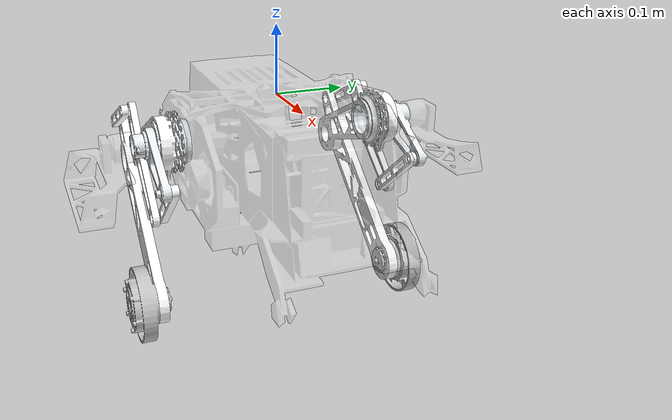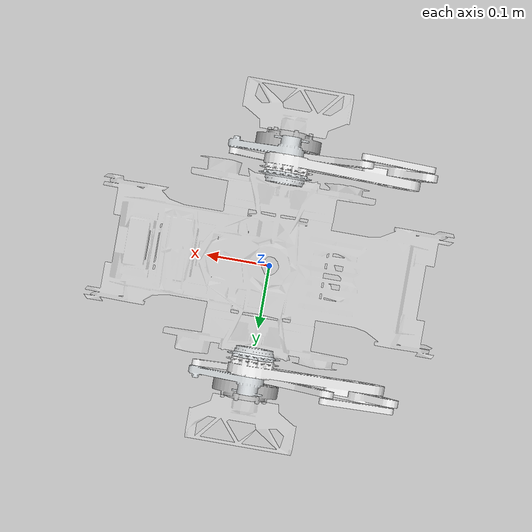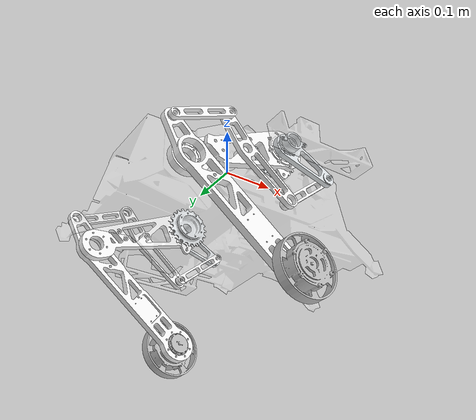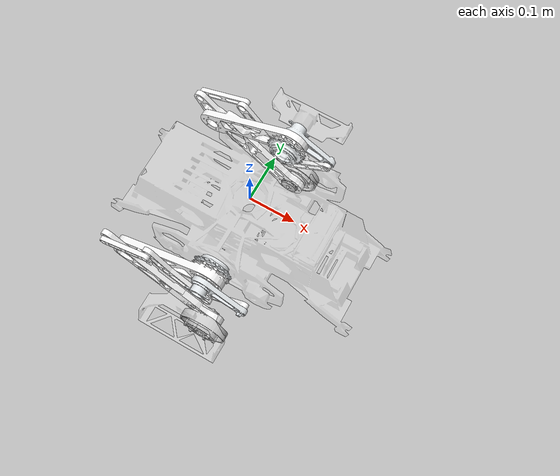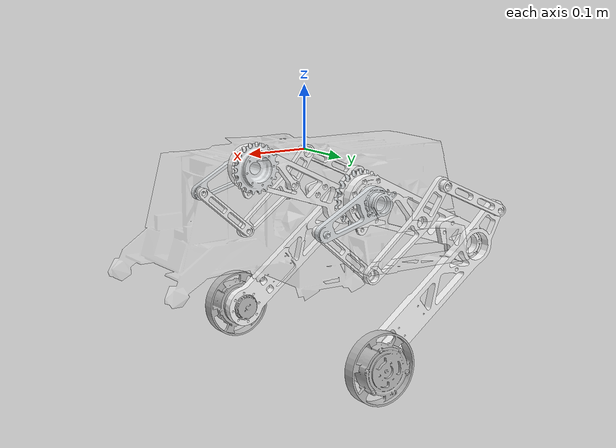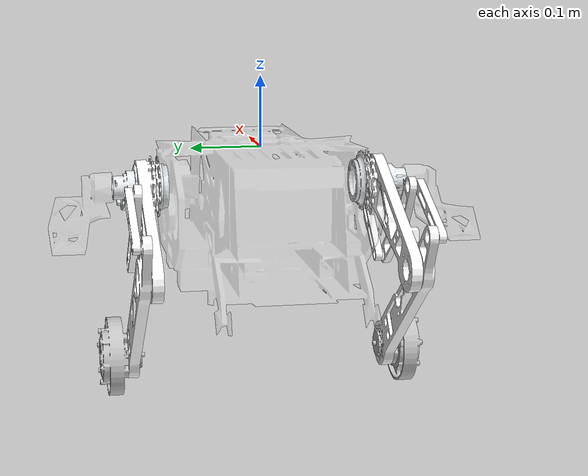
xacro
<?xml version="1.0"?>
<robot xmlns:xacro="http://www.ros.org/wiki/xacro" name="at_wheel_leg">
    <xacro:include filename="$(find atwl)/model/at_wheel_leg.urdf" />

    <ros2_control name="atwl_system" type="system">
        <hardware>
            <plugin>mujoco_ros2_control/MujocoSystem</plugin>
        </hardware>

        <joint name="base_link_left_front1_link_joint">
            <command_interface name="effort" />
            <state_interface name="position" />
            <state_interface name="velocity" />
            <state_interface name="effort" />
        </joint>

        <joint name="base_link_right_front1_link_joint">
            <command_interface name="effort" />
            <state_interface name="position" />
            <state_interface name="velocity" />
            <state_interface name="effort" />
        </joint>

        <joint name="base_link_left_rear1_link_joint">
            <command_interface name="effort" />
            <state_interface name="position" />
            <state_interface name="velocity" />
            <state_interface name="effort" />
        </joint>

        <joint name="base_link_right_rear1_link_joint">
            <command_interface name="effort" />
            <state_interface name="position" />
            <state_interface name="velocity" />
            <state_interface name="effort" />
        </joint>

        <joint name="left_rear2_link_left_wheel_link_joint">
            <command_interface name="effort" />
            <state_interface name="position" />
            <state_interface name="velocity" />
            <state_interface name="effort" />
        </joint>

        <joint name="right_rear2_link_right_wheel_link_joint">
            <command_interface name="effort" />
            <state_interface name="position" />
            <state_interface name="velocity" />
            <state_interface name="effort" />
        </joint>
    </ros2_control>
</robot>

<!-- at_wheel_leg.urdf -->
<robot
  name="at_wheel_leg">
  <link
    name="base_link">
    <inertial>
      <origin
        xyz="0.0166017212610828 -0.00156965062075262 -0.0947729612931393"
        rpy="0 0 0" />
      <mass
        value="10.51259490" />
      <inertia
        ixx="0.14496049"
        ixy="0"
        ixz="-0.00068753"
        iyy="0.14966292"
        iyz="0.00038021"
        izz="0.24991099" />
    </inertial>
    <visual>
      <origin
        xyz="0 0 0"
        rpy="0 0 0" />
      <geometry>
        <mesh
          filename="base_link.STL" />
      </geometry>
      <material
        name="">
        <color
          rgba="1 1 1 0.25" />
      </material>
    </visual>
    <collision>
      <origin
        xyz="0 0 0"
        rpy="0 0 0" />
      <geometry>
        <mesh
          filename="base_link.STL" />
      </geometry>
    </collision>
  </link>
  <link
    name="left_front1_link">
    <inertial>
      <origin
        xyz="0.0149970599113191 -0.0168863626491255 3.71072167160147E-08"
        rpy="0 0 0" />
      <mass
        value="0.26714" />
      <inertia
        ixx="0.00016801"
        ixy="-0.0000361"
        ixz="0"
        iyy="0.00023307"
        iyz="0"
        izz="0.00028002" />
    </inertial>
    <visual>
      <origin
        xyz="0 0 0"
        rpy="0 0 0" />
      <geometry>
        <mesh
          filename="left_front1_link.STL" />
      </geometry>
      <material
        name="">
        <color
          rgba="0.898039215686275 0.917647058823529 0.929411764705882 1" />
      </material>
    </visual>
    <collision>
      <origin
        xyz="0 0 0"
        rpy="0 0 0" />
      <geometry>
        <mesh
          filename="left_front1_link.STL" />
      </geometry>
    </collision>
  </link>
  <joint
    name="base_link_left_front1_link_joint"
    type="revolute">
    <origin
      xyz="0 0.185 -0.053"
      rpy="0 0.39893 0" />
    <parent
      link="base_link" />
    <child
      link="left_front1_link" />
    <axis
      xyz="0 1 0" />
    <limit
      lower="-3.14"
      upper="3.14"
      effort="40"
      velocity="30" />
  </joint>
  <link
    name="left_front2_link">
    <inertial>
      <origin
        xyz="-0.042567432117982 -0.00112033236667039 -0.0367705891204183"
        rpy="0 0 0" />
      <mass
        value="0.0214872432936065" />
      <inertia
        ixx="0.00001477"
        ixy="0"
        ixz="-0.00001592"
        iyy="0.00003386"
        iyz="0"
        izz="0.00001945" />
    </inertial>
    <visual>
      <origin
        xyz="0 0 0"
        rpy="0 0 0" />
      <geometry>
        <mesh
          filename="left_front2_link.STL" />
      </geometry>
      <material
        name="">
        <color
          rgba="1 1 1 1" />
      </material>
    </visual>
    <collision>
      <origin
        xyz="0 0 0"
        rpy="0 0 0" />
      <geometry>
        <mesh
          filename="left_front2_link.STL" />
      </geometry>
    </collision>
  </link>
  <joint
    name="left_front1_link_left_front2_link_joint"
    type="revolute">
    <origin
      xyz="0.0945 -0.01025 0"
      rpy="0 -0.39893 0" />
    <parent
      link="left_front1_link" />
    <child
      link="left_front2_link" />
    <axis
      xyz="0 -1 0" />
    <limit
      lower="-3.14"
      upper="3.14"
      effort="0"
      velocity="20" />
  </joint>
  <link
    name="left_front3_link">
    <inertial>
      <origin
        xyz="-0.0702304161203611 2.08166817117217E-15 0.0609499686138"
        rpy="0 0 0" />
      <mass
        value="0.037256436794627" />
      <inertia
        ixx="0.00005792"
        ixy="0"
        ixz="0.00005605"
        iyy="0.00012181"
        iyz="0"
        izz="0.00006451" />
    </inertial>
    <visual>
      <origin
        xyz="0 0 0"
        rpy="0 0 0" />
      <geometry>
        <mesh
          filename="left_front3_link.STL" />
      </geometry>
      <material
        name="">
        <color
          rgba="1 1 1 1" />
      </material>
    </visual>
    <collision>
      <origin
        xyz="0 0 0"
        rpy="0 0 0" />
      <geometry>
        <mesh
          filename="left_front3_link.STL" />
      </geometry>
    </collision>
  </link>
  <joint
    name="left_front2_link_left_front3_link_joint"
    type="revolute">
    <origin
      xyz="-0.085135 0.01075 -0.073541"
      rpy="0 0 0" />
    <parent
      link="left_front2_link" />
    <child
      link="left_front3_link" />
    <axis
      xyz="0 -1 0" />
    <limit
      lower="-3.14"
      upper="3.14"
      effort="0"
      velocity="20" />
  </joint>
  <link
    name="left_front4_link">
    <inertial>
      <origin
        xyz="-0.0523910357845979 0.00113189437648306 -0.0242948913798561"
        rpy="0 0 0" />
      <mass
        value="0.0235907478549685" />
      <inertia
        ixx="0.00000743"
        ixy="0"
        ixz="-0.00001374"
        iyy="0.00003774"
        iyz="0"
        izz="0.00003069" />
    </inertial>
    <visual>
      <origin
        xyz="0 0 0"
        rpy="0 0 0" />
      <geometry>
        <mesh
          filename="left_front4_link.STL" />
      </geometry>
      <material
        name="">
        <color
          rgba="1 1 1 1" />
      </material>
    </visual>
    <collision>
      <origin
        xyz="0 0 0"
        rpy="0 0 0" />
      <geometry>
        <mesh
          filename="left_front4_link.STL" />
      </geometry>
    </collision>
  </link>
  <joint
    name="left_front3_link_left_front4_link_joint"
    type="revolute">
    <origin
      xyz="-0.12606 0.01075 0.12295"
      rpy="0 0 0" />
    <parent
      link="left_front3_link" />
    <child
      link="left_front4_link" />
    <axis
      xyz="0 -1 0" />
    <limit
      lower="-3.14"
      upper="3.14"
      effort="0"
      velocity="20" />
  </joint>
  <link
    name="left_rear1_link">
    <inertial>
      <origin
        xyz="0.0767492017596194 9.47193804834434E-05 -0.0027258467056125"
        rpy="0 0 0" />
      <mass
        value="0.313983977716467" />
      <inertia
        ixx="0.00014511"
        ixy="-0.00002477"
        ixz="0.00002642"
        iyy="0.0023003"
        iyz="0.00000216"
        izz="0.00218452" />
    </inertial>
    <visual>
      <origin
        xyz="0 0 0"
        rpy="0 0 0" />
      <geometry>
        <mesh
          filename="left_rear1_link.STL" />
      </geometry>
      <material
        name="">
        <color
          rgba="1 1 1 1" />
      </material>
    </visual>
    <collision>
      <origin
        xyz="0 0 0"
        rpy="0 0 0" />
      <geometry>
        <mesh
          filename="left_rear1_link.STL" />
      </geometry>
    </collision>
  </link>
  <joint
    name="base_link_left_rear1_link_joint"
    type="revolute">
    <origin
      xyz="0 0.1695 -0.053"
      rpy="-3.1416 0.43421 -3.1416" />
    <parent
      link="base_link" />
    <child
      link="left_rear1_link" />
    <axis
      xyz="0 1 0" />
    <limit
      lower="-3.14"
      upper="3.14"
      effort="40"
      velocity="30" />
  </joint>
  <link
    name="left_rear2_link">
    <inertial>
      <origin
        xyz="0.0958809525984923 0.000314484635483225 -0.0760938020594703"
        rpy="0 0 0" />
      <mass
        value="0.21951866177246" />
      <inertia
        ixx="0.00085962"
        ixy="-0.00000533"
        ixz="0.00094077"
        iyy="0.00204843"
        iyz="0.00000439"
        izz="0.00119648" />
    </inertial>
    <visual>
      <origin
        xyz="0 0 0"
        rpy="0 0 0" />
      <geometry>
        <mesh
          filename="left_rear2_link.STL" />
      </geometry>
      <material
        name="">
        <color
          rgba="1 1 1 1" />
      </material>
    </visual>
    <collision>
      <origin
        xyz="0 0 0"
        rpy="0 0 0" />
      <geometry>
        <mesh
          filename="left_rear2_link.STL" />
      </geometry>
    </collision>
  </link>
  <joint
    name="left_rear1_link_left_rear2_link_joint"
    type="revolute">
    <origin
      xyz="0.21 0.0165 0"
      rpy="-3.1416 -0.43421 3.1416" />
    <parent
      link="left_rear1_link" />
    <child
      link="left_rear2_link" />
    <axis
      xyz="0 1 0" />
    <limit
      lower="-3.14"
      upper="3.14"
      effort="0"
      velocity="20" />
  </joint>
  <link
    name="left_wheel_link">
    <inertial>
      <origin
        xyz="0.000229964593045939 0.00361868872721502 -0.000125006559334034"
        rpy="0 0 0" />
      <mass
        value="0.47" />
      <inertia
        ixx="0.00029889"
        ixy="0.00000079"
        ixz="-0.00000089"
        iyy="0.00039991"
        iyz="-0.00000044"
        izz="0.00029791" />
    </inertial>
    <visual>
      <origin
        xyz="0 0 0"
        rpy="0 0 0" />
      <geometry>
        <mesh
          filename="left_wheel_link.STL" />
      </geometry>
      <material
        name="">
        <color
          rgba="0.752941176470588 0.752941176470588 0.752941176470588 1" />
      </material>
    </visual>
    <collision>
      <origin
        xyz="0 0.013 0"
        rpy="1.5708 0 0" />
      <geometry>
        <cylinder
          radius="0.056"
          length="0.021" />
      </geometry>
    </collision>
  </link>
  <joint
    name="left_rear2_link_left_wheel_link_joint"
    type="continuous">
    <origin
      xyz="0.19483 0.0155 -0.15665"
      rpy="0 0 0" />
    <parent
      link="left_rear2_link" />
    <child
      link="left_wheel_link" />
    <axis
      xyz="0 1 0" />
  </joint>
  <link
    name="right_front1_link">
    <inertial>
      <origin
        xyz="0.0149970486301528 0.0168863626417305 4.10439869591439E-08"
        rpy="0 0 0" />
      <mass
        value="0.26714489" />
      <inertia
        ixx="0.00016838"
        ixy="0.00003610"
        ixz="0.00000002"
        iyy="0.00023307"
        iyz="0"
        izz="0.00027966" />
    </inertial>
    <visual>
      <origin
        xyz="0 0 0"
        rpy="0 0 0" />
      <geometry>
        <mesh
          filename="right_front1_link.STL" />
      </geometry>
      <material
        name="">
        <color
          rgba="0.898039215686275 0.917647058823529 0.929411764705882 1" />
      </material>
    </visual>
    <collision>
      <origin
        xyz="0 0 0"
        rpy="0 0 0" />
      <geometry>
        <mesh
          filename="right_front1_link.STL" />
      </geometry>
    </collision>
  </link>
  <joint
    name="base_link_right_front1_link_joint"
    type="revolute">
    <origin
      xyz="0 -0.185 -0.053"
      rpy="0 0.39893 0" />
    <parent
      link="base_link" />
    <child
      link="right_front1_link" />
    <axis
      xyz="0 1 0" />
    <limit
      lower="-3.14"
      upper="3.14"
      effort="40"
      velocity="30" />
  </joint>
  <link
    name="right_front2_link">
    <inertial>
      <origin
        xyz="-0.0425674228109045 0.00112033236667086 -0.0367705997799142"
        rpy="0 0 0" />
      <mass
        value="0.0214872432936066" />
      <inertia
        ixx="0.00001477"
        ixy="0"
        ixz="-0.00001592"
        iyy="0.00003386"
        iyz="0"
        izz="0.00001945" />
    </inertial>
    <visual>
      <origin
        xyz="0 0 0"
        rpy="0 0 0" />
      <geometry>
        <mesh
          filename="right_front2_link.STL" />
      </geometry>
      <material
        name="">
        <color
          rgba="1 1 1 1" />
      </material>
    </visual>
    <collision>
      <origin
        xyz="0 0 0"
        rpy="0 0 0" />
      <geometry>
        <mesh
          filename="right_front2_link.STL" />
      </geometry>
    </collision>
  </link>
  <joint
    name="right_front1_link_right_front2_link_joint"
    type="revolute">
    <origin
      xyz="0.0945 0.01025 0"
      rpy="0 -0.39893 0" />
    <parent
      link="right_front1_link" />
    <child
      link="right_front2_link" />
    <axis
      xyz="0 1 0" />
    <limit
      lower="-3.14"
      upper="3.14"
      effort="0"
      velocity="20" />
  </joint>
  <link
    name="right_front3_link">
    <inertial>
      <origin
        xyz="-0.0702304503527541 2.77555756156289E-17 0.0609499283259885"
        rpy="0 0 0" />
      <mass
        value="0.037256436794627" />
      <inertia
        ixx="0.00005792"
        ixy="0"
        ixz=" 0.00005605"
        iyy="0.00012181"
        iyz="0"
        izz="0.00006451" />
    </inertial>
    <visual>
      <origin
        xyz="0 0 0"
        rpy="0 0 0" />
      <geometry>
        <mesh
          filename="right_front3_link.STL" />
      </geometry>
      <material
        name="">
        <color
          rgba="1 1 1 1" />
      </material>
    </visual>
    <collision>
      <origin
        xyz="0 0 0"
        rpy="0 0 0" />
      <geometry>
        <mesh
          filename="right_front3_link.STL" />
      </geometry>
    </collision>
  </link>
  <joint
    name="right_front2_link_right_front3_link_joint"
    type="revolute">
    <origin
      xyz="-0.085135 -0.01075 -0.073541"
      rpy="0 0 0" />
    <parent
      link="right_front2_link" />
    <child
      link="right_front3_link" />
    <axis
      xyz="0 -1 0" />
    <limit
      lower="-3.14"
      upper="3.14"
      effort="0"
      velocity="20" />
  </joint>
  <link
    name="right_front4_link">
    <inertial>
      <origin
        xyz="-0.0523910378806442 -0.00113189437648251 -0.0242948954562969"
        rpy="0 0 0" />
      <mass
        value="0.0235907478549685" />
      <inertia
        ixx="0.00000743"
        ixy="0"
        ixz="-0.00001374"
        iyy="0.00003774"
        iyz="0"
        izz="0.00003069" />
    </inertial>
    <visual>
      <origin
        xyz="0 0 0"
        rpy="0 0 0" />
      <geometry>
        <mesh
          filename="right_front4_link.STL" />
      </geometry>
      <material
        name="">
        <color
          rgba="1 1 1 1" />
      </material>
    </visual>
    <collision>
      <origin
        xyz="0 0 0"
        rpy="0 0 0" />
      <geometry>
        <mesh
          filename="right_front4_link.STL" />
      </geometry>
    </collision>
  </link>
  <joint
    name="right_front3_link_right_front4_link_joint"
    type="revolute">
    <origin
      xyz="-0.12606 -0.01075 0.12295"
      rpy="0 0 0" />
    <parent
      link="right_front3_link" />
    <child
      link="right_front4_link" />
    <axis
      xyz="0 -1 0" />
    <limit
      lower="-3.14"
      upper="3.14"
      effort="0"
      velocity="20" />
  </joint>
  <link
    name="right_rear1_link">
    <inertial>
      <origin
        xyz="0.0767492004895694 -9.47170311066392E-05 -0.00272584678141602"
        rpy="0 0 0" />
      <mass
        value="0.313983977716467" />
      <inertia
        ixx="0.00014511"
        ixy="0.00002477"
        ixz="0.00002642"
        iyy="0.00230030"
        iyz="-0.00000216"
        izz="0.00218452" />
    </inertial>
    <visual>
      <origin
        xyz="0 0 0"
        rpy="0 0 0" />
      <geometry>
        <mesh
          filename="right_rear1_link.STL" />
      </geometry>
      <material
        name="">
        <color
          rgba="1 1 1 1" />
      </material>
    </visual>
    <collision>
      <origin
        xyz="0 0 0"
        rpy="0 0 0" />
      <geometry>
        <mesh
          filename="right_rear1_link.STL" />
      </geometry>
    </collision>
  </link>
  <joint
    name="base_link_right_rear1_link_joint"
    type="revolute">
    <origin
      xyz="0 -0.1695 -0.053"
      rpy="-3.1416 0.43421 -3.1416" />
    <parent
      link="base_link" />
    <child
      link="right_rear1_link" />
    <axis
      xyz="0 1 0" />
    <limit
      lower="-3.14"
      upper="3.14"
      effort="40"
      velocity="30" />
  </joint>
  <link
    name="right_rear2_link">
    <inertial>
      <origin
        xyz="0.09635311825158 -0.000154523405650503 -0.0764867143627533"
        rpy="0 0 0" />
      <mass
        value="0.221615349787061" />
      <inertia
        ixx="0.00086281"
        ixy="0.00000277"
        ixz="0.00094408"
        iyy="0.00205592"
        iyz="-0.00000231"
        izz="0.00120077" />
    </inertial>
    <visual>
      <origin
        xyz="0 0 0"
        rpy="0 0 0" />
      <geometry>
        <mesh
          filename="right_rear2_link.STL" />
      </geometry>
      <material
        name="">
        <color
          rgba="1 1 1 1" />
      </material>
    </visual>
    <collision>
      <origin
        xyz="0 0 0"
        rpy="0 0 0" />
      <geometry>
        <mesh
          filename="right_rear2_link.STL" />
      </geometry>
    </collision>
  </link>
  <joint
    name="right_rear1_link_right_rear2_link_joint"
    type="revolute">
    <origin
      xyz="0.210000001339564 -0.0165000000000001 0"
      rpy="-3.14159265358979 -0.434206638096008 3.14159265358979" />
    <parent
      link="right_rear1_link" />
    <child
      link="right_rear2_link" />
    <axis
      xyz="0 -1 0" />
    <limit
      lower="-3.14"
      upper="3.14"
      effort="0"
      velocity="20" />
  </joint>
  <link
    name="right_wheel_link">
    <inertial>
      <origin
        xyz="0.000216811178018085 -0.00361868874060106 -0.000146633751460845"
        rpy="0 0 0" />
      <mass
        value="0.47" />
      <inertia
        ixx="0.00029884"
        ixy="-0.00000075"
        ixz="-0.00000091"
        iyy="0.00039991"
        iyz="0.00000050"
        izz="0.00029796" />
    </inertial>
    <visual>
      <origin
        xyz="0 0 0"
        rpy="0 0 0" />
      <geometry>
        <mesh
          filename="right_wheel_link.STL" />
      </geometry>
      <material
        name="">
        <color
          rgba="0.752941176470588 0.752941176470588 0.752941176470588 1" />
      </material>
    </visual>
    <collision>
      <origin
        xyz="0 -0.013 0"
        rpy="1.5708 0 0" />
      <geometry>
        <cylinder
          radius="0.056"
          length="0.021" />
      </geometry>
    </collision>
  </link>
  <joint
    name="right_rear2_link_right_wheel_link_joint"
    type="continuous">
    <origin
      xyz="0.19483 -0.0155 -0.15665"
      rpy="0 0 0" />
    <parent
      link="right_rear2_link" />
    <child
      link="right_wheel_link" />
    <axis
      xyz="0 1 0" />
  </joint>
</robot>
